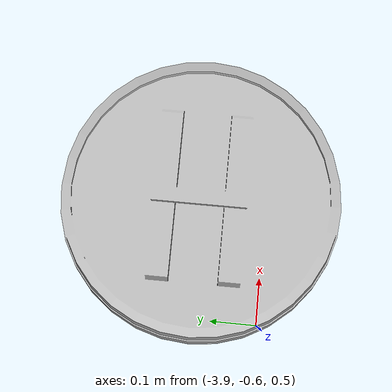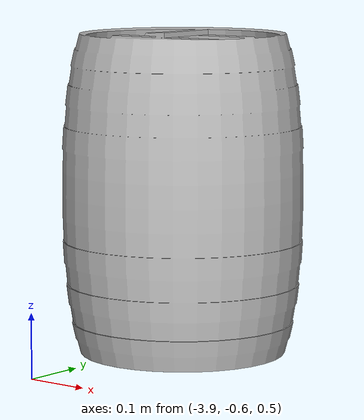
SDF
<?xml version="1.0" ?>
<sdf version="1.11">
  <model name="barrel1">
    <static>false</static>

    <link name="base_link">
      <pose>0 0 0.45 0 0 0</pose> <!-- Half the barrel height above water -->

      <inertial>
        <mass>25</mass> <!-- lighter than a container -->
        <inertia>
          <ixx>1.0</ixx>
          <iyy>1.0</iyy>
          <izz>1.0</izz>
          <ixy>0</ixy>
          <ixz>0</ixz>
          <iyz>0</iyz>
        </inertia>
      </inertial>

      <collision name="collision">
        <geometry>
          <mesh>
            <uri>model://newnames/barrel1/meshes/model.dae</uri>
          </mesh>
        </geometry>
        <surface>
          <contact>
            <collide_without_contact>true</collide_without_contact>
          </contact>
        </surface>
      </collision>

      <visual name="visual">
        <geometry>
          <mesh>
            <uri>model://newnames/barrel1/meshes/model.dae</uri>
          </mesh>
        </geometry>
        <material>
          <pbr>
            <metal>
              <albedo_map>model://newnames/barrel1/materials/textures/barrel_Base_Color.png</albedo_map>
              <normal_map>model://newnames/barrel1/materials/textures/barrel_Normal.png</normal_map>
              <roughness_map>model://newnames/barrel1/materials/textures/barrel_Roughness.png</roughness_map>
              <metalness_map>model://newnames/barrel1/materials/textures/barrel_Metallic.png</metalness_map>
              <ambient_occlusion_map>model://newnames/barrel1/materials/textures/barrel_Mixed_AO.png</ambient_occlusion_map>
            </metal>
          </pbr>
        </material>
      </visual>
    </link>

    <!-- Surface plugin for wave interaction -->
    <plugin name="vrx::Surface" filename="libSurface.so">
      <link_name>base_link</link_name>
      <hull_length>0.9</hull_length>
      <hull_radius>0.29</hull_radius>
      <fluid_level>0</fluid_level>
      <points>
        <point>0.25 0.25 0</point>
        <point>-0.25 0.25 0</point>
        <point>0.25 -0.25 0</point>
        <point>-0.25 -0.25 0</point>
      </points>
      <wavefield>
        <topic>/vrx/wavefield/parameters</topic>
      </wavefield>
    </plugin>

    <!-- Hydrodynamics plugin -->
    <plugin name="vrx::SimpleHydrodynamics" filename="libSimpleHydrodynamics.so">
      <link_name>base_link</link_name>
      <xDotU>0.0</xDotU>
      <yDotV>0.0</yDotV>
      <nDotR>0.0</nDotR>
      <xU>150.0</xU>
      <xUU>300.0</xUU>
      <yV>150.0</yV>
      <yVV>300.0</yVV>
      <zW>1500.0</zW> <!-- vertical damping for buoyancy -->
      <kP>300.0</kP>
      <kPP>500.0</kPP>
      <mQ>300.0</mQ>
      <mQQ>500.0</mQQ>
      <nR>200.0</nR>
      <nRR>400.0</nRR>
    </plugin>

    <!-- Odometry publisher -->
    <plugin filename="gz-sim-odometry-publisher-system"
            name="gz::sim::systems::OdometryPublisher">
      <odom_frame>world</odom_frame>
      <robot_base_frame>base_link</robot_base_frame>
      <odom_topic>/model/barrel1/odometry</odom_topic>
      <odom_covariance_topic>/model/barrel1/odometry_with_covariance</odom_covariance_topic>
      <tf_topic>/model/barrel1/pose</tf_topic>
      <odom_publish_frequency>30</odom_publish_frequency>
      <dimensions>3</dimensions>
      <gaussian_noise>0.0</gaussian_noise>
    </plugin>
  </model>
</sdf>
